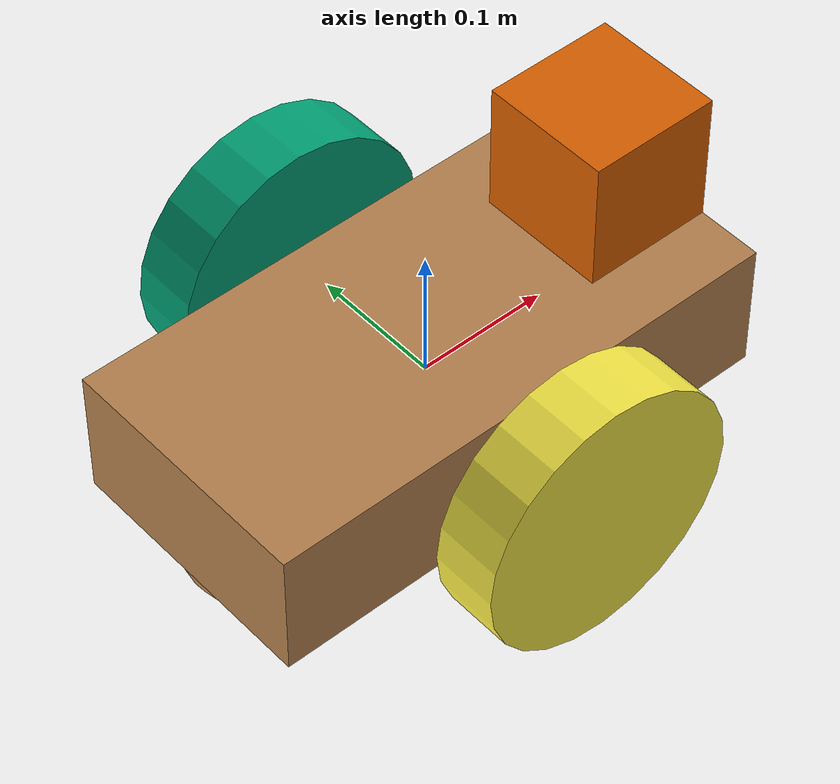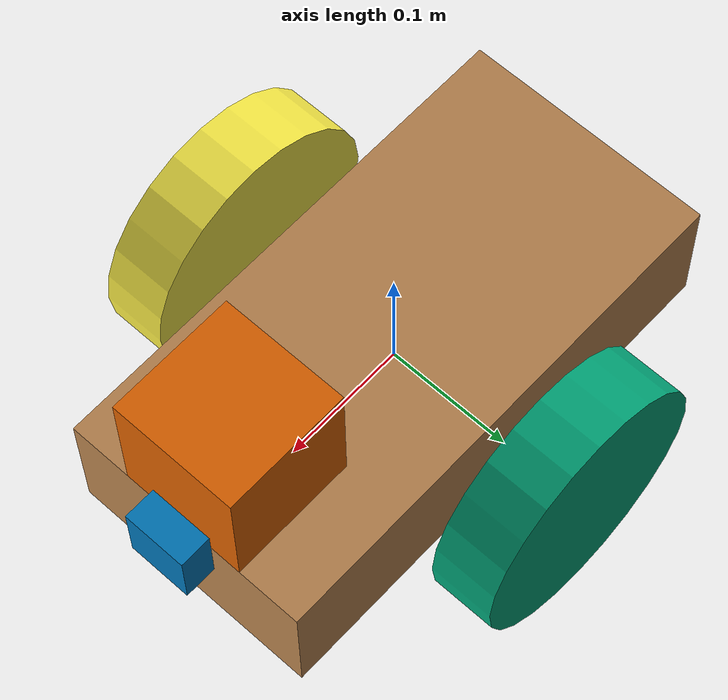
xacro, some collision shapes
<?xml version='1.0'?>
<robot name="udacity_bot" xmlns:xacro="http://www.ros.org/wiki/xacro">

    <xacro:include filename="$(find udacity_bot)/urdf/udacity_bot.gazebo"/>

    <link name="robot_footprint"></link>

    <joint name="robot_footprint_joint" type="fixed">
        <origin xyz="0 0 0" rpy="0 0 0"/>
        <parent link="robot_footprint"/>
        <child link="chassis"/>
    </joint>

    <link name='chassis'>
        <pose>0 0 0.1 0 0 0</pose>

        <inertial>
            <mass value="15.0"/>
            <origin xyz="0.0 0 0" rpy=" 0 0 0"/>
            <inertia
                    ixx="0.1" ixy="0" ixz="0"
                    iyy="0.1" iyz="0"
                    izz="0.1"
            />
        </inertial>

        <collision name='collision'>
            <origin xyz="0 0 0" rpy=" 0 0 0"/>
            <geometry>
                <box size=".4 .2 .1" />
            </geometry>
        </collision>

        <visual name='chassis_visual'>
            <origin xyz="0 0 0" rpy=" 0 0 0"/>
            <geometry>
                <box size=".4 .2 .1" />
            </geometry>
        </visual>

        <collision name='back_caster_collision'>
            <origin xyz="-0.15 0 -0.05" rpy=" 0 0 0"/>
            <geometry>
                <sphere radius="0.048"/>
            </geometry>
            <surface>
                <friction>
                    <ode>
                        <mu>0</mu>
                        <mu2>0</mu2>
                        <slip1>1.0</slip1>
                        <slip2>1.0</slip2>
                    </ode>
                </friction>
            </surface>
        </collision>

        <visual name='back_caster_visual'>
            <origin xyz="-0.15 0 -0.05" rpy=" 0 0 0"/>
            <geometry>
                <sphere radius="0.048"/>
            </geometry>
        </visual>

        <collision name='front_caster_collision'>
            <origin xyz="0.15 0 -0.05" rpy=" 0 0 0"/>
            <geometry>
                <sphere radius="0.048"/>
            </geometry>
            <surface>
                <friction>
                    <ode>
                        <mu>0</mu>
                        <mu2>0</mu2>
                        <slip1>1.0</slip1>
                        <slip2>1.0</slip2>
                    </ode>
                </friction>
            </surface>
        </collision>

        <visual name='front_caster_visual'>
            <origin xyz="0.15 0 -0.05" rpy=" 0 0 0"/>
            <geometry>
                <sphere radius="0.048"/>
            </geometry>
        </visual>

    </link>

    <!--Side wheels-->
    <!--Left wheels-->
    <link name='left_wheel'>
        <pose>0 0 0.1 0 0 0</pose>

        <inertial>
            <mass value="5.0"/>
            <origin xyz="0.0 0 0" rpy=" 0 1.5707 1.5707"/>
            <inertia
                    ixx="0.1" ixy="0" ixz="0"
                    iyy="0.1" iyz="0"
                    izz="0.1"
            />
        </inertial>

        <collision name='left_wheel_collision'>
            <origin xyz="0.0 0 0" rpy=" 0 1.5707 1.5707"/>
            <geometry>
                <cylinder radius="0.1" length="0.05"/>
            </geometry>
        </collision>

        <visual name='left_wheel_visual'>
            <origin xyz="0.0 0 0" rpy=" 0 1.5707 1.5707"/>
            <geometry>
                <cylinder radius="0.1" length="0.05"/>
            </geometry>
        </visual>
    </link>

    <joint type="continuous" name="left_wheel_hinge">
        <origin xyz="0 0.15 0" rpy="0 0 0"/>
        <child link="left_wheel"/>
        <parent link="chassis"/>
        <axis xyz="0 1 0" rpy="0 0 0"/>
        <limit effort="10000" velocity="1000"/>
        <joint_properties damping="1.0" friction="1.0"/>
    </joint>

    <!--right wheels-->
    <link name='right_wheel'>
        <pose>0 0 0.1 0 0 0</pose>

        <inertial>
            <mass value="5.0"/>
            <origin xyz="0.0 0 0" rpy=" 0 1.5707 1.5707"/>
            <inertia
                    ixx="0.1" ixy="0" ixz="0"
                    iyy="0.1" iyz="0"
                    izz="0.1"
            />
        </inertial>

        <collision name='right_wheel_collision'>
            <origin xyz="0.0 0 0" rpy=" 0 1.5707 1.5707"/>
            <geometry>
                <cylinder radius="0.1" length="0.05"/>
            </geometry>
        </collision>

        <visual name='right_wheel_visual'>
            <origin xyz="0.0 0 0" rpy=" 0 1.5707 1.5707"/>
            <geometry>
                <cylinder radius="0.1" length="0.05"/>
            </geometry>
        </visual>
    </link>

    <joint type="continuous" name="right_wheel_hinge">
        <origin xyz="0 -0.15 0" rpy="0 0 0"/>
        <child link="right_wheel"/>
        <parent link="chassis"/>
        <axis xyz="0 1 0" rpy="0 0 0"/>
        <limit effort="10000" velocity="1000"/>
        <joint_properties damping="1.0" friction="1.0"/>
    </joint>

    <!--Camera sensor wheels-->
    <link name='camera'>
        <pose>0 0 0.1 0 0 0</pose>

        <inertial>
            <mass value="0.1"/>
            <origin xyz="0.0 0 0" rpy=" 0 0 0"/>
            <inertia
                    ixx="1e-6" ixy="0" ixz="0"
                    iyy="1e-6" iyz="0"
                    izz="1e-6"
            />
        </inertial>

        <collision name='camera_collision'>
            <origin xyz="0.0 0 0" rpy=" 0 0 0"/>
            <geometry>
                <box size=".05 .05 .05"/>
            </geometry>
        </collision>

        <visual name='camera_visual'>
            <origin xyz="0.0 0 0.040" rpy=" 0 0 0"/>
            <geometry>
                <box size=".05 .05 .05"/>
            </geometry>
        </visual>
    </link>

    <joint type="continuous" name="camera_joint">
        <origin xyz="0.2 0 0" rpy="0 0 0"/>
        <child link="camera"/>
        <parent link="chassis"/>
        <axis xyz="0 1 0" rpy="0 0 0"/>
        <limit effort="10000" velocity="1000"/>
        <joint_properties damping="1.0" friction="1.0"/>
    </joint>

    <!--Laser RangeFinder-->
    <link name='hokuyo'>
        <pose>0 0 0.1 0 0 0</pose>

        <inertial>
            <mass value="0.1"/>
            <origin xyz="0.0 0 0" rpy=" 0 0 0"/>
            <inertia
                    ixx="1e-6" ixy="0" ixz="0"
                    iyy="1e-6" iyz="0"
                    izz="1e-6"
            />
        </inertial>

        <collision name='hokuyo_collision'>
            <origin xyz="0.0 0 0" rpy=" 0 0 0"/>
            <geometry>
                <box size=".1 .1 .1"/>
            </geometry>
        </collision>

        <!-- mesh file used for visuals for rangefinder -->
        <visual name='hokuyo_visual'>
            <origin xyz="0.0 0 0" rpy=" 0 0 0"/>
            <geometry>
                <mesh filename="package://udacity_bot/meshes/hokuyo.dae"/>
            </geometry>
        </visual>

    </link>
    <joint type="continuous" name="hokuyo_joint">
        <origin xyz=".15 0 .1" rpy="0 0 0"/>
        <child link="hokuyo"/>
        <parent link="chassis"/>
        <axis xyz="0 1 0" rpy="0 0 0"/>
        <limit effort="10000" velocity="1000"/>
        <joint_properties damping="1.0" friction="1.0"/>
    </joint>

</robot>
